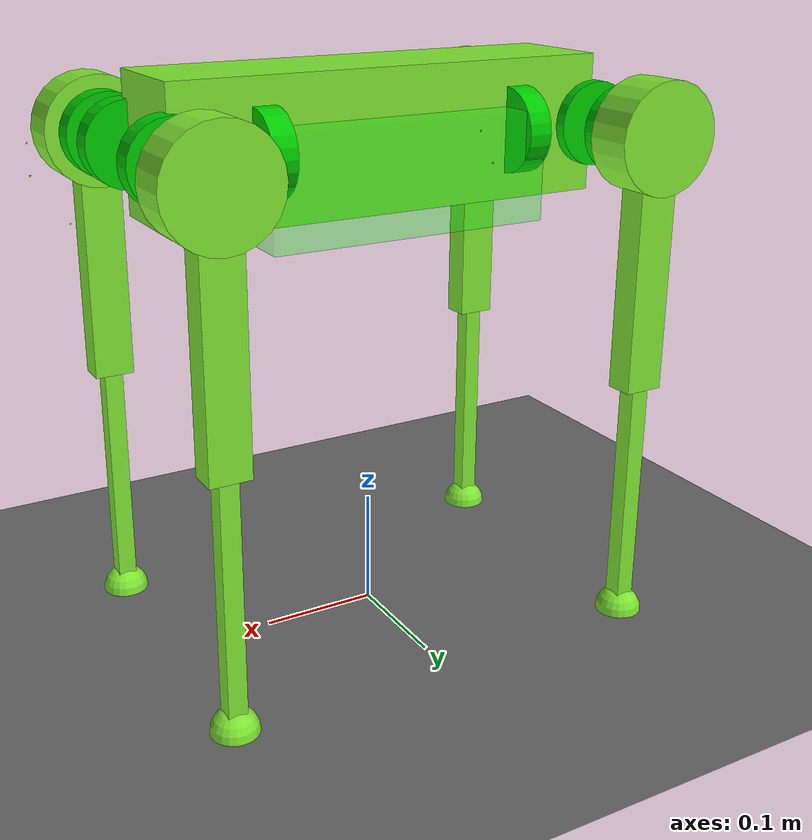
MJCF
<mujoco model="go1">
  <option iterations="50" timestep="0.002" solver="PGS" gravity="0 0 -9.81" />

  <compiler angle="radian" meshdir="meshes" eulerseq="zyx" autolimits="true" />

  <default>
    <joint limited="true" damping="0.01" armature="0.01" frictionloss="0.01" />
    <geom condim="4" contype="1" conaffinity="15" friction="0.9 0.2 0.2" solref="0.001 2" />
    <motor ctrllimited="true" />
    <equality solref="0.001 2" />
    <default class="visualgeom">
      <geom material="visualgeom" condim="1" contype="0" conaffinity="0" />
    </default>
  </default>

  <worldbody>
    <light directional="true" diffuse="0.4 0.4 0.4" specular="0.1 0.1 0.1" pos="0 0 5.0" dir="0 0 -1" castshadow="false" />
    <light directional="true" diffuse="0.6 0.6 0.6" specular="0.2 0.2 0.2" pos="0 0 4" dir="0 0 -1" />
    <geom name="ground" type="plane" pos="0 0 0" size="100 100 0.001" quat="1 0 0 0" material="matplane" condim="3" conaffinity="15" />
    <camera name="fixed" pos="0 -3.0 0.9259999999999999" xyaxes="1 0 0 0 0 1" />
    <camera name="track" mode="trackcom" pos="0 -3.0 0.9259999999999999" xyaxes="1 0 0 0 0 1" />
    <body name="root" pos="0 0 0.426" quat="1 0 0 0">
      <freejoint name="root" />
      <site name="imu" size="0.01" pos="0 0 0" />
      <geom size="0.1881 0.04675 0.057" type="box" contype="1" conaffinity="0" density="0" group="1" class="visualgeom" />
      <geom type="box" size="0.1881 0.04675 0.057" />
      <geom size="0.0005 0.0005 0.0005" pos="-0.01592 -0.06659 -0.00617" type="box" contype="1" conaffinity="0" density="0" group="1" class="visualgeom" />
      <geom type="box" size="0.0005 0.0005 0.0005" pos="-0.01592 -0.06659 -0.00617" />
      <geom size="0.035 0.01" pos="0.11215 -0.04675 0" quat="0.707107 0 0.707107 0" type="cylinder" rgba="0 0.8 0 1" contype="1" conaffinity="0" density="0" group="1" class="visualgeom" />
      <geom type="cylinder" size="0.035 0.01" rgba="0 0.8 0 1" pos="0.11215 -0.04675 0" quat="0.707107 0 0.707107 0" />
      <geom size="0.035 0.01" pos="0.11215 0.04675 0" quat="0.707107 0 0.707107 0" type="cylinder" rgba="0 0.8 0 1" contype="1" conaffinity="0" density="0" group="1" class="visualgeom" />
      <geom type="cylinder" size="0.035 0.01" rgba="0 0.8 0 1" pos="0.11215 0.04675 0" quat="0.707107 0 0.707107 0" />
      <geom size="0.035 0.01" pos="-0.11215 -0.04675 0" quat="0.707107 0 0.707107 0" type="cylinder" rgba="0 0.8 0 1" contype="1" conaffinity="0" density="0" group="1" class="visualgeom" />
      <geom type="cylinder" size="0.035 0.01" rgba="0 0.8 0 1" pos="-0.11215 -0.04675 0" quat="0.707107 0 0.707107 0" />
      <geom size="0.035 0.01" pos="-0.11215 0.04675 0" quat="0.707107 0 0.707107 0" type="cylinder" rgba="0 0.8 0 1" contype="1" conaffinity="0" density="0" group="1" class="visualgeom" />
      <geom type="cylinder" size="0.035 0.01" rgba="0 0.8 0 1" pos="-0.11215 0.04675 0" quat="0.707107 0 0.707107 0" />
      <geom size="0.0005 0.0005 0.0005" pos="0.2785 0.0125 0.0167" quat="0 1 0 0" type="box" contype="1" conaffinity="0" density="0" group="1" class="visualgeom" />
      <geom type="box" size="0.0005 0.0005 0.0005" pos="0.2785 0.0125 0.0167" quat="0 1 0 0" />
      <geom size="0.0005 0.0005 0.0005" pos="0.2522 0.0125 -0.0436" quat="0 0.707107 0 -0.707107" type="box" contype="1" conaffinity="0" density="0" group="1" class="visualgeom" />
      <geom type="box" size="0.0005 0.0005 0.0005" pos="0.2522 0.0125 -0.0436" quat="0 0.707107 0 -0.707107" />
      <geom size="0.0005 0.0005 0.0005" pos="-0.066 0.082 -0.0176" quat="0.0922962 0.701057 0.701057 -0.0922962" type="box" contype="1" conaffinity="0" density="0" group="1" class="visualgeom" />
      <geom type="box" size="0.0005 0.0005 0.0005" pos="-0.066 0.082 -0.0176" quat="0.0922962 0.701057 0.701057 -0.0922962" />
      <geom size="0.0005 0.0005 0.0005" pos="-0.041 -0.082 -0.0176" quat="-0.0922962 0.701057 -0.701057 -0.0922962" type="box" contype="1" conaffinity="0" density="0" group="1" class="visualgeom" />
      <geom type="box" size="0.0005 0.0005 0.0005" pos="-0.041 -0.082 -0.0176" quat="-0.0922962 0.701057 -0.701057 -0.0922962" />
      <geom size="0.0005 0.0005 0.0005" pos="-0.0825 0.0125 -0.04365" quat="0 0.707107 0 -0.707107" type="box" contype="1" conaffinity="0" density="0" group="1" class="visualgeom" />
      <geom type="box" size="0.0005 0.0005 0.0005" pos="-0.0825 0.0125 -0.04365" quat="0 0.707107 0 -0.707107" />
      <geom size="0.0005 0.0005 0.0005" pos="-0.0535 0.0826 0.00868" quat="0.701057 -0.0922962 0.0922962 0.701057" type="box" contype="1" conaffinity="0" density="0" group="1" class="visualgeom" />
      <geom type="box" size="0.0005 0.0005 0.0005" pos="-0.0535 0.0826 0.00868" quat="0.701057 -0.0922962 0.0922962 0.701057" />
      <geom size="0.0005 0.0005 0.0005" pos="-0.0535 -0.0826 0.00868" quat="0.701057 0.0922962 0.0922962 -0.701057" type="box" contype="1" conaffinity="0" density="0" group="1" class="visualgeom" />
      <geom type="box" size="0.0005 0.0005 0.0005" pos="-0.0535 -0.0826 0.00868" quat="0.701057 0.0922962 0.0922962 -0.701057" />
      <geom size="0.0005 0.0005 0.0005" pos="0.2747 0 -0.0088" type="box" contype="1" conaffinity="0" density="0" group="1" class="visualgeom" />
      <geom type="box" size="0.0005 0.0005 0.0005" pos="0.2747 0 -0.0088" />
      <body name="FR_hip" pos="0.1881 -0.04675 0">
        <inertial pos="-0.00493623 0.00760652 -8.865e-05" quat="0.507313 0.514167 0.495055 0.482894" mass="0.68" diaginertia="0.000733932 0.00046851 0.000398923" />
        <joint name="FR_hip_joint" pos="0 0 0" axis="1 0 0" range="-0.863 0.863" actuatorfrcrange="-23.7 23.7" />
        <geom size="0.046 0.02" pos="0 -0.08 0" quat="0.707107 0.707107 0 0" type="cylinder" contype="1" conaffinity="0" density="0" group="1" class="visualgeom" />
        <geom type="cylinder" size="0.046 0.02" pos="0 -0.08 0" quat="0.707107 0.707107 0 0" />
        <geom size="0.035 0.01" pos="0 0.00015 0" quat="0.707107 0.707107 0 0" type="cylinder" rgba="0 0.8 0 1" contype="1" conaffinity="0" density="0" group="1" class="visualgeom" />
        <geom type="cylinder" size="0.035 0.01" rgba="0 0.8 0 1" pos="0 0.00015 0" quat="0.707107 0.707107 0 0" />
        <body name="FR_thigh" pos="0 -0.08 0">
          <inertial pos="-0.00590068 0.0164615 -0.0305004" quat="0.582731 -0.0225334 0.0656397 0.809696" mass="1.009" diaginertia="0.00485342 0.00458749 0.000819046" />
          <joint name="FR_thigh_joint" pos="0 0 0" axis="0 1 0" range="-0.686 4.501" actuatorfrcrange="-23.7 23.7" />
          <geom size="0.1065 0.01225 0.017" pos="0 0 -0.1065" quat="0.707107 0 0.707107 0" type="box" contype="1" conaffinity="0" density="0" group="1" class="visualgeom" />
          <geom type="box" size="0.1065 0.01225 0.017" pos="0 0 -0.1065" quat="0.707107 0 0.707107 0" />
          <geom size="0.035 0.01" pos="0 0.03235 0" quat="0.707107 0.707107 0 0" type="cylinder" rgba="0 0.8 0 1" contype="1" conaffinity="0" density="0" group="1" class="visualgeom" />
          <geom type="cylinder" size="0.035 0.01" rgba="0 0.8 0 1" pos="0 0.03235 0" quat="0.707107 0.707107 0 0" />
          <body name="FR_calf" pos="0 0 -0.213">
            <inertial pos="0.00429862 0.000976676 -0.146197" quat="0.691246 0.00357467 0.00511118 0.722592" mass="0.195862" diaginertia="0.00149767 0.00148468 3.58427e-05" />
            <joint name="FR_calf_joint" pos="0 0 0" axis="0 1 0" range="-2.818 -0.888" actuatorfrcrange="-35.55 35.55" />
            <geom size="0.1065 0.008 0.008" pos="0 0 -0.1065" quat="0.707107 0 0.707107 0" type="box" contype="1" conaffinity="0" density="0" group="1" class="visualgeom" />
            <geom type="box" size="0.1065 0.008 0.008" pos="0 0 -0.1065" quat="0.707107 0 0.707107 0" />
            <geom size="0.02" pos="0 0 -0.213" contype="1" conaffinity="0" density="0" group="1" class="visualgeom" />
            <geom type="sphere" size="0.02" pos="0 0 -0.213" />
          </body>
        </body>
      </body>
      <body name="FL_hip" pos="0.1881 0.04675 0">
        <inertial pos="-0.00489697 -0.00760652 -8.865e-05" quat="0.482775 0.494885 0.514283 0.507474" mass="0.68" diaginertia="0.000734212 0.000468772 0.000398906" />
        <joint name="FL_hip_joint" pos="0 0 0" axis="1 0 0" range="-0.863 0.863" actuatorfrcrange="-23.7 23.7" />
        <geom size="0.046 0.02" pos="0 0.08 0" quat="0.707107 0.707107 0 0" type="cylinder" contype="1" conaffinity="0" density="0" group="1" class="visualgeom" />
        <geom type="cylinder" size="0.046 0.02" pos="0 0.08 0" quat="0.707107 0.707107 0 0" />
        <geom size="0.035 0.01" pos="0 -0.00015 0" quat="0.707107 0.707107 0 0" type="cylinder" rgba="0 0.8 0 1" contype="1" conaffinity="0" density="0" group="1" class="visualgeom" />
        <geom type="cylinder" size="0.035 0.01" rgba="0 0.8 0 1" pos="0 -0.00015 0" quat="0.707107 0.707107 0 0" />
        <body name="FL_thigh" pos="0 0.08 0">
          <inertial pos="-0.000193746 -0.0164615 -0.0305004" quat="0.646181 0.074067 -0.0230168 0.759233" mass="1.009" diaginertia="0.00486694 0.00462899 0.000834209" />
          <joint name="FL_thigh_joint" pos="0 0 0" axis="0 1 0" range="-0.686 4.501" actuatorfrcrange="-23.7 23.7" />
          <geom size="0.1065 0.01225 0.017" pos="0 0 -0.1065" quat="0.707107 0 0.707107 0" type="box" contype="1" conaffinity="0" density="0" group="1" class="visualgeom" />
          <geom type="box" size="0.1065 0.01225 0.017" pos="0 0 -0.1065" quat="0.707107 0 0.707107 0" />
          <geom size="0.035 0.01" pos="0 -0.03235 0" quat="0.707107 0.707107 0 0" type="cylinder" rgba="0 0.8 0 1" contype="1" conaffinity="0" density="0" group="1" class="visualgeom" />
          <geom type="cylinder" size="0.035 0.01" rgba="0 0.8 0 1" pos="0 -0.03235 0" quat="0.707107 0.707107 0 0" />
          <body name="FL_calf" pos="0 0 -0.213">
            <inertial pos="0.00429862 0.000976676 -0.146197" quat="0.691246 0.00357467 0.00511118 0.722592" mass="0.195862" diaginertia="0.00149767 0.00148468 3.58427e-05" />
            <joint name="FL_calf_joint" pos="0 0 0" axis="0 1 0" range="-2.818 -0.888" actuatorfrcrange="-35.55 35.55" />
            <geom size="0.1065 0.008 0.008" pos="0 0 -0.1065" quat="0.707107 0 0.707107 0" type="box" contype="1" conaffinity="0" density="0" group="1" class="visualgeom" />
            <geom type="box" size="0.1065 0.008 0.008" pos="0 0 -0.1065" quat="0.707107 0 0.707107 0" />
            <geom size="0.02" pos="0 0 -0.213" contype="1" conaffinity="0" density="0" group="1" class="visualgeom" />
            <geom type="sphere" size="0.02" pos="0 0 -0.213" />
          </body>
        </body>
      </body>
      <body name="RR_hip" pos="-0.1881 -0.04675 0">
        <inertial pos="0.00489697 0.00760652 -8.865e-05" quat="0.494885 0.482775 0.507474 0.514283" mass="0.68" diaginertia="0.000734212 0.000468772 0.000398906" />
        <joint name="RR_hip_joint" pos="0 0 0" axis="1 0 0" range="-0.863 0.863" actuatorfrcrange="-23.7 23.7" />
        <geom size="0.046 0.02" pos="0 -0.08 0" quat="0.707107 0.707107 0 0" type="cylinder" contype="1" conaffinity="0" density="0" group="1" class="visualgeom" />
        <geom type="cylinder" size="0.046 0.02" pos="0 -0.08 0" quat="0.707107 0.707107 0 0" />
        <geom size="0.035 0.01" pos="0 0.00015 0" quat="0.707107 0.707107 0 0" type="cylinder" rgba="0 0.8 0 1" contype="1" conaffinity="0" density="0" group="1" class="visualgeom" />
        <geom type="cylinder" size="0.035 0.01" rgba="0 0.8 0 1" pos="0 0.00015 0" quat="0.707107 0.707107 0 0" />
        <body name="RR_thigh" pos="0 -0.08 0">
          <inertial pos="-0.00590068 0.0164615 -0.0305004" quat="0.582731 -0.0225334 0.0656397 0.809696" mass="1.009" diaginertia="0.00485342 0.00458749 0.000819046" />
          <joint name="RR_thigh_joint" pos="0 0 0" axis="0 1 0" range="-0.686 4.501" actuatorfrcrange="-23.7 23.7" />
          <geom size="0.1065 0.01225 0.017" pos="0 0 -0.1065" quat="0.707107 0 0.707107 0" type="box" contype="1" conaffinity="0" density="0" group="1" class="visualgeom" />
          <geom type="box" size="0.1065 0.01225 0.017" pos="0 0 -0.1065" quat="0.707107 0 0.707107 0" />
          <geom size="0.035 0.01" pos="0 0.03235 0" quat="0.707107 0.707107 0 0" type="cylinder" rgba="0 0.8 0 1" contype="1" conaffinity="0" density="0" group="1" class="visualgeom" />
          <geom type="cylinder" size="0.035 0.01" rgba="0 0.8 0 1" pos="0 0.03235 0" quat="0.707107 0.707107 0 0" />
          <body name="RR_calf" pos="0 0 -0.213">
            <inertial pos="0.00429862 0.000976676 -0.146197" quat="0.691246 0.00357467 0.00511118 0.722592" mass="0.195862" diaginertia="0.00149767 0.00148468 3.58427e-05" />
            <joint name="RR_calf_joint" pos="0 0 0" axis="0 1 0" range="-2.818 -0.888" actuatorfrcrange="-35.55 35.55" />
            <geom size="0.1065 0.008 0.008" pos="0 0 -0.1065" quat="0.707107 0 0.707107 0" type="box" contype="1" conaffinity="0" density="0" group="1" class="visualgeom" />
            <geom type="box" size="0.1065 0.008 0.008" pos="0 0 -0.1065" quat="0.707107 0 0.707107 0" />
            <geom size="0.02" pos="0 0 -0.213" contype="1" conaffinity="0" density="0" group="1" class="visualgeom" />
            <geom type="sphere" size="0.02" pos="0 0 -0.213" />
          </body>
        </body>
      </body>
      <body name="RL_hip" pos="-0.1881 0.04675 0">
        <inertial pos="0.00493623 -0.00760652 -8.865e-05" quat="0.514167 0.507313 0.482894 0.495055" mass="0.68" diaginertia="0.000733932 0.00046851 0.000398923" />
        <joint name="RL_hip_joint" pos="0 0 0" axis="1 0 0" range="-0.863 0.863" actuatorfrcrange="-23.7 23.7" />
        <geom size="0.046 0.02" pos="0 0.08 0" quat="0.707107 0.707107 0 0" type="cylinder" contype="1" conaffinity="0" density="0" group="1" class="visualgeom" />
        <geom type="cylinder" size="0.046 0.02" pos="0 0.08 0" quat="0.707107 0.707107 0 0" />
        <geom size="0.035 0.01" pos="0 -0.00015 0" quat="0.707107 0.707107 0 0" type="cylinder" rgba="0 0.8 0 1" contype="1" conaffinity="0" density="0" group="1" class="visualgeom" />
        <geom type="cylinder" size="0.035 0.01" rgba="0 0.8 0 1" pos="0 -0.00015 0" quat="0.707107 0.707107 0 0" />
        <body name="RL_thigh" pos="0 0.08 0">
          <inertial pos="-0.000193746 -0.0164615 -0.0305004" quat="0.646181 0.074067 -0.0230168 0.759233" mass="1.009" diaginertia="0.00486694 0.00462899 0.000834209" />
          <joint name="RL_thigh_joint" pos="0 0 0" axis="0 1 0" range="-0.686 4.501" actuatorfrcrange="-23.7 23.7" />
          <geom size="0.1065 0.01225 0.017" pos="0 0 -0.1065" quat="0.707107 0 0.707107 0" type="box" contype="1" conaffinity="0" density="0" group="1" class="visualgeom" />
          <geom type="box" size="0.1065 0.01225 0.017" pos="0 0 -0.1065" quat="0.707107 0 0.707107 0" />
          <geom size="0.035 0.01" pos="0 -0.03235 0" quat="0.707107 0.707107 0 0" type="cylinder" rgba="0 0.8 0 1" contype="1" conaffinity="0" density="0" group="1" class="visualgeom" />
          <geom type="cylinder" size="0.035 0.01" rgba="0 0.8 0 1" pos="0 -0.03235 0" quat="0.707107 0.707107 0 0" />
          <body name="RL_calf" pos="0 0 -0.213">
            <inertial pos="0.00429862 0.000976676 -0.146197" quat="0.691246 0.00357467 0.00511118 0.722592" mass="0.195862" diaginertia="0.00149767 0.00148468 3.58427e-05" />
            <joint name="RL_calf_joint" pos="0 0 0" axis="0 1 0" range="-2.818 -0.888" actuatorfrcrange="-35.55 35.55" />
            <geom size="0.1065 0.008 0.008" pos="0 0 -0.1065" quat="0.707107 0 0.707107 0" type="box" contype="1" conaffinity="0" density="0" group="1" class="visualgeom" />
            <geom type="box" size="0.1065 0.008 0.008" pos="0 0 -0.1065" quat="0.707107 0 0.707107 0" />
            <geom size="0.02" pos="0 0 -0.213" contype="1" conaffinity="0" density="0" group="1" class="visualgeom" />
            <geom type="sphere" size="0.02" pos="0 0 -0.213" />
          </body>
        </body>
      </body>
    </body>

    <body name="estimator_box"
      mocap="true"
      pos="0 0 0.4"
      quat="1 0 0 0">
      <geom name="estimator_box_geom"
            type="box"
            size="0.12 0.075 0.045"
            rgba="0.1 1.0 0.1 0.35"
            contype="0"
            conaffinity="0"
            density="0"
            group="2"/>
    </body>
  </worldbody>

  <asset>
    <texture name="texplane" type="2d" builtin="checker" rgb1=".0 .0 .0" rgb2=".8 .8 .8" width="100" height="100" />
    <material name="matplane" reflectance="0." texture="texplane" texrepeat="1 1" texuniform="true" />
    <material name="visualgeom" rgba="0.5 0.9 0.2 1" />
  </asset>

  <keyframe>
    <key name="sit_down_pose"
         qpos="0 0 0.1  1 0 0 0  -0.2 0.98 -2.64  0.2 0.98 -2.64  -0.2 0.98 -2.64  0.2 0.98 -2.64"
         ctrl="0 0 0 0 0 0 0 0 0 0 0 0" />
  </keyframe>

  <actuator>
    <motor name="FR_hip_joint" joint="FR_hip_joint" ctrllimited="true" ctrlrange="-23.7 23.7" gear="1" />
    <motor name="FR_thigh_joint" joint="FR_thigh_joint" ctrllimited="true" ctrlrange="-23.7 23.7" gear="1" />
    <motor name="FR_calf_joint" joint="FR_calf_joint" ctrllimited="true" ctrlrange="-35.55 35.55" gear="1" />
    <motor name="FL_hip_joint" joint="FL_hip_joint" ctrllimited="true" ctrlrange="-23.7 23.7" gear="1" />
    <motor name="FL_thigh_joint" joint="FL_thigh_joint" ctrllimited="true" ctrlrange="-23.7 23.7" gear="1" />
    <motor name="FL_calf_joint" joint="FL_calf_joint" ctrllimited="true" ctrlrange="-35.55 35.55" gear="1" />
    <motor name="RR_hip_joint" joint="RR_hip_joint" ctrllimited="true" ctrlrange="-23.7 23.7" gear="1" />
    <motor name="RR_thigh_joint" joint="RR_thigh_joint" ctrllimited="true" ctrlrange="-23.7 23.7" gear="1" />
    <motor name="RR_calf_joint" joint="RR_calf_joint" ctrllimited="true" ctrlrange="-35.55 35.55" gear="1" />
    <motor name="RL_hip_joint" joint="RL_hip_joint" ctrllimited="true" ctrlrange="-23.7 23.7" gear="1" />
    <motor name="RL_thigh_joint" joint="RL_thigh_joint" ctrllimited="true" ctrlrange="-23.7 23.7" gear="1" />
    <motor name="RL_calf_joint" joint="RL_calf_joint" ctrllimited="true" ctrlrange="-35.55 35.55" gear="1" />
  </actuator>

  <sensor>
    <actuatorpos name="FR_hip_joint_p" actuator="FR_hip_joint" />
    <actuatorvel name="FR_hip_joint_v" actuator="FR_hip_joint" />
    <actuatorfrc name="FR_hip_joint_f" actuator="FR_hip_joint" noise="0.001" />
    <actuatorpos name="FR_thigh_joint_p" actuator="FR_thigh_joint" />
    <actuatorvel name="FR_thigh_joint_v" actuator="FR_thigh_joint" />
    <actuatorfrc name="FR_thigh_joint_f" actuator="FR_thigh_joint" noise="0.001" />
    <actuatorpos name="FR_calf_joint_p" actuator="FR_calf_joint" />
    <actuatorvel name="FR_calf_joint_v" actuator="FR_calf_joint" />
    <actuatorfrc name="FR_calf_joint_f" actuator="FR_calf_joint" noise="0.001" />
    <actuatorpos name="FL_hip_joint_p" actuator="FL_hip_joint" />
    <actuatorvel name="FL_hip_joint_v" actuator="FL_hip_joint" />
    <actuatorfrc name="FL_hip_joint_f" actuator="FL_hip_joint" noise="0.001" />
    <actuatorpos name="FL_thigh_joint_p" actuator="FL_thigh_joint" />
    <actuatorvel name="FL_thigh_joint_v" actuator="FL_thigh_joint" />
    <actuatorfrc name="FL_thigh_joint_f" actuator="FL_thigh_joint" noise="0.001" />
    <actuatorpos name="FL_calf_joint_p" actuator="FL_calf_joint" />
    <actuatorvel name="FL_calf_joint_v" actuator="FL_calf_joint" />
    <actuatorfrc name="FL_calf_joint_f" actuator="FL_calf_joint" noise="0.001" />
    <actuatorpos name="RR_hip_joint_p" actuator="RR_hip_joint" />
    <actuatorvel name="RR_hip_joint_v" actuator="RR_hip_joint" />
    <actuatorfrc name="RR_hip_joint_f" actuator="RR_hip_joint" noise="0.001" />
    <actuatorpos name="RR_thigh_joint_p" actuator="RR_thigh_joint" />
    <actuatorvel name="RR_thigh_joint_v" actuator="RR_thigh_joint" />
    <actuatorfrc name="RR_thigh_joint_f" actuator="RR_thigh_joint" noise="0.001" />
    <actuatorpos name="RR_calf_joint_p" actuator="RR_calf_joint" />
    <actuatorvel name="RR_calf_joint_v" actuator="RR_calf_joint" />
    <actuatorfrc name="RR_calf_joint_f" actuator="RR_calf_joint" noise="0.001" />
    <actuatorpos name="RL_hip_joint_p" actuator="RL_hip_joint" />
    <actuatorvel name="RL_hip_joint_v" actuator="RL_hip_joint" />
    <actuatorfrc name="RL_hip_joint_f" actuator="RL_hip_joint" noise="0.001" />
    <actuatorpos name="RL_thigh_joint_p" actuator="RL_thigh_joint" />
    <actuatorvel name="RL_thigh_joint_v" actuator="RL_thigh_joint" />
    <actuatorfrc name="RL_thigh_joint_f" actuator="RL_thigh_joint" noise="0.001" />
    <actuatorpos name="RL_calf_joint_p" actuator="RL_calf_joint" />
    <actuatorvel name="RL_calf_joint_v" actuator="RL_calf_joint" />
    <actuatorfrc name="RL_calf_joint_f" actuator="RL_calf_joint" noise="0.001" />
    <framequat name="imu_quat" objtype="site" noise="0.000" objname="imu" />
    <gyro name="imu_gyro" site="imu" noise="0.000" cutoff="34.9" />
    <accelerometer name="imu_acc" site="imu"/>
  </sensor>
</mujoco>
